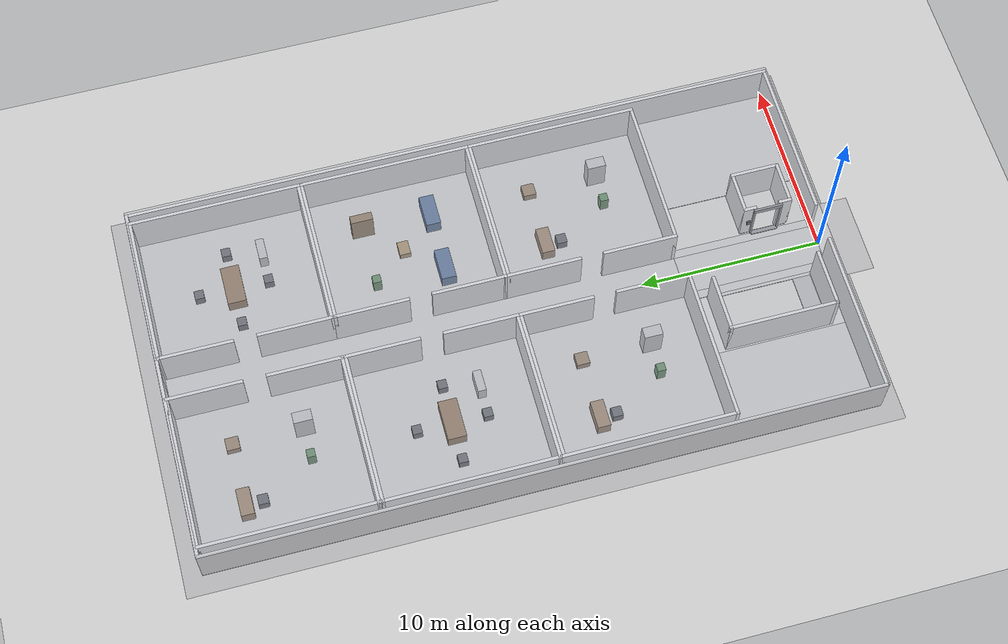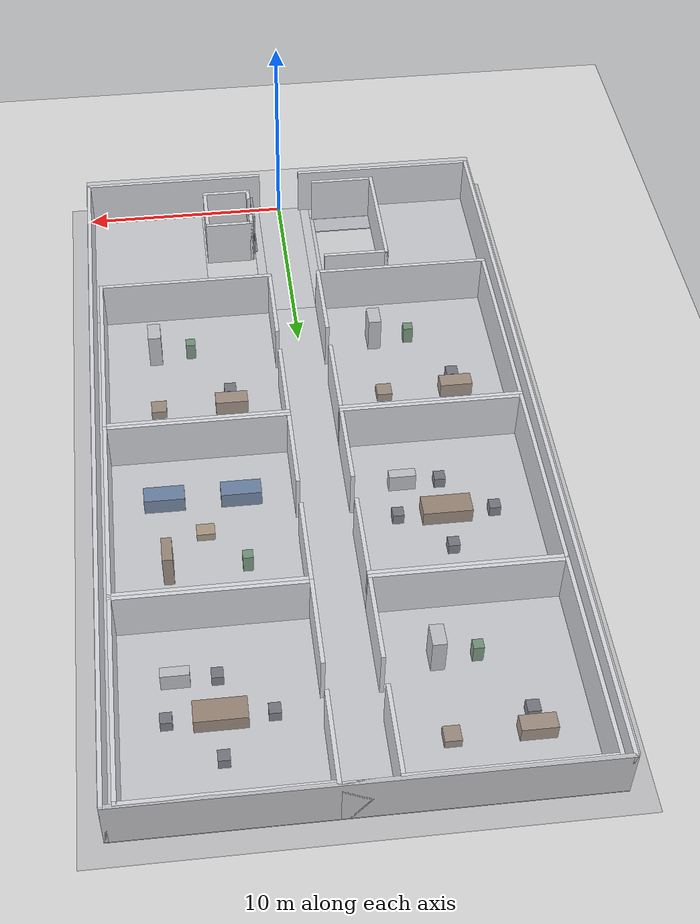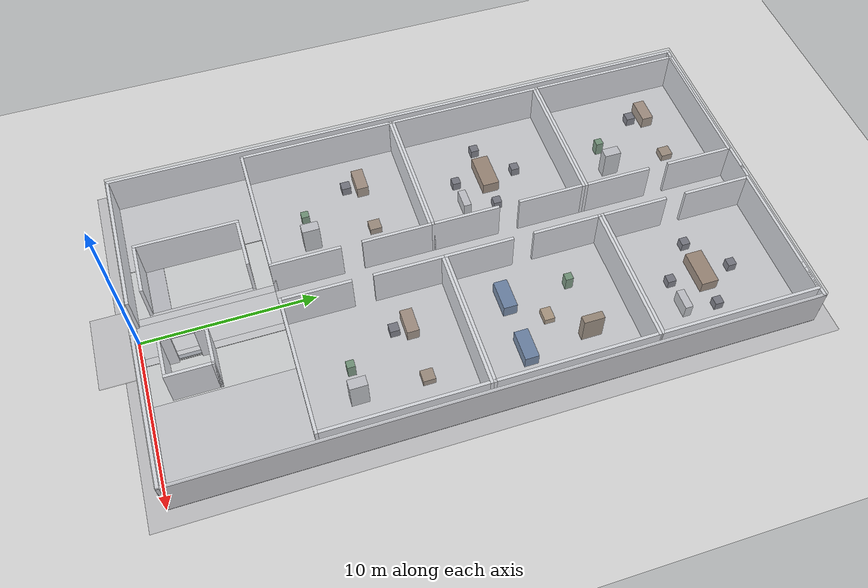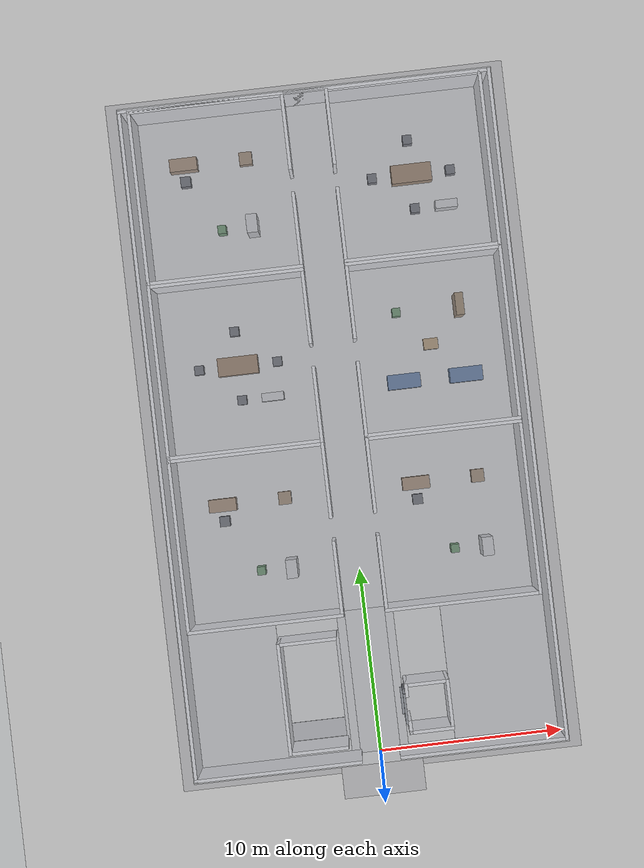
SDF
<sdf version="1.7">
 <world name="generated_world">
  <include><uri>model://sun</uri></include>
  <include><uri>model://ground_plane</uri></include>
  <model name="generated_building">
   <static>true</static>
   <link name="foundation">
    <pose>0.0000 18.0000 -0.1500 0.0000 0.0000 0.0000</pose>
    <collision name="foundation_collision">
     <geometry><box><size>22.0000 38.0000 0.3000</size></box></geometry>
    </collision>
    <visual name="foundation_visual">
     <geometry><box><size>22.0000 38.0000 0.3000</size></box></geometry>
     <material><ambient>0.58 0.58 0.60 0.35</ambient><diffuse>0.58 0.58 0.60 0.35</diffuse></material>
    </visual>
    <gravity>false</gravity>
   </link>
   <link name="entrance_apron">
    <pose>0.0000 -1.2000 0.0400 0.0000 0.0000 0.0000</pose>
    <collision name="entrance_apron_collision">
     <geometry><box><size>4.5000 2.4000 0.0800</size></box></geometry>
    </collision>
    <visual name="entrance_apron_visual">
     <geometry><box><size>4.5000 2.4000 0.0800</size></box></geometry>
     <material><ambient>0.62 0.62 0.64 0.35</ambient><diffuse>0.62 0.62 0.64 0.35</diffuse></material>
    </visual>
    <gravity>false</gravity>
   </link>
   <link name="slab_floor_0_0">
    <pose>0.0000 21.9250 -0.1100 0.0000 0.0000 0.0000</pose>
    <collision name="slab_floor_0_0_collision">
     <geometry><box><size>20.0000 28.1500 0.2200</size></box></geometry>
    </collision>
    <visual name="slab_floor_0_0_visual">
     <geometry><box><size>20.0000 28.1500 0.2200</size></box></geometry>
     <material><ambient>0.76 0.76 0.77 1.0</ambient><diffuse>0.76 0.76 0.77 1.0</diffuse></material>
    </visual>
    <gravity>false</gravity>
   </link>
   <link name="slab_floor_0_1">
    <pose>-7.4700 3.9250 -0.1100 0.0000 0.0000 0.0000</pose>
    <collision name="slab_floor_0_1_collision">
     <geometry><box><size>5.0600 7.8500 0.2200</size></box></geometry>
    </collision>
    <visual name="slab_floor_0_1_visual">
     <geometry><box><size>5.0600 7.8500 0.2200</size></box></geometry>
     <material><ambient>0.76 0.76 0.77 1.0</ambient><diffuse>0.76 0.76 0.77 1.0</diffuse></material>
    </visual>
    <gravity>false</gravity>
   </link>
   <link name="slab_floor_0_2">
    <pose>-1.3300 3.9250 -0.1100 0.0000 0.0000 0.0000</pose>
    <collision name="slab_floor_0_2_collision">
     <geometry><box><size>0.4600 7.8500 0.2200</size></box></geometry>
    </collision>
    <visual name="slab_floor_0_2_visual">
     <geometry><box><size>0.4600 7.8500 0.2200</size></box></geometry>
     <material><ambient>0.76 0.76 0.77 1.0</ambient><diffuse>0.76 0.76 0.77 1.0</diffuse></material>
    </visual>
    <gravity>false</gravity>
   </link>
   <link name="slab_floor_0_3">
    <pose>0.0000 3.9250 -0.1100 0.0000 0.0000 0.0000</pose>
    <collision name="slab_floor_0_3_collision">
     <geometry><box><size>2.2000 7.8500 0.2200</size></box></geometry>
    </collision>
    <visual name="slab_floor_0_3_visual">
     <geometry><box><size>2.2000 7.8500 0.2200</size></box></geometry>
     <material><ambient>0.76 0.76 0.77 1.0</ambient><diffuse>0.76 0.76 0.77 1.0</diffuse></material>
    </visual>
    <gravity>false</gravity>
   </link>
   <link name="slab_floor_0_4">
    <pose>1.3300 3.9250 -0.1100 0.0000 0.0000 0.0000</pose>
    <collision name="slab_floor_0_4_collision">
     <geometry><box><size>0.4600 7.8500 0.2200</size></box></geometry>
    </collision>
    <visual name="slab_floor_0_4_visual">
     <geometry><box><size>0.4600 7.8500 0.2200</size></box></geometry>
     <material><ambient>0.76 0.76 0.77 1.0</ambient><diffuse>0.76 0.76 0.77 1.0</diffuse></material>
    </visual>
    <gravity>false</gravity>
   </link>
   <link name="slab_floor_0_5">
    <pose>7.0700 3.9250 -0.1100 0.0000 0.0000 0.0000</pose>
    <collision name="slab_floor_0_5_collision">
     <geometry><box><size>5.8600 7.8500 0.2200</size></box></geometry>
    </collision>
    <visual name="slab_floor_0_5_visual">
     <geometry><box><size>5.8600 7.8500 0.2200</size></box></geometry>
     <material><ambient>0.76 0.76 0.77 1.0</ambient><diffuse>0.76 0.76 0.77 1.0</diffuse></material>
    </visual>
    <gravity>false</gravity>
   </link>
   <link name="stair_edge_infill_floor_0">
    <pose>-1.6500 3.8500 -0.1100 0.0000 0.0000 0.0000</pose>
    <collision name="stair_edge_infill_floor_0_collision">
     <geometry><box><size>0.1800 6.0000 0.2200</size></box></geometry>
    </collision>
    <visual name="stair_edge_infill_floor_0_visual">
     <geometry><box><size>0.1800 6.0000 0.2200</size></box></geometry>
     <material><ambient>0.76 0.76 0.77 1.0</ambient><diffuse>0.76 0.76 0.77 1.0</diffuse></material>
    </visual>
    <gravity>false</gravity>
   </link>
   <link name="exterior_west_floor_0">
    <pose>-9.9100 18.0000 1.2250 0.0000 0.0000 0.0000</pose>
    <collision name="exterior_west_floor_0_collision">
     <geometry><box><size>0.1800 36.0000 2.4500</size></box></geometry>
    </collision>
    <visual name="exterior_west_floor_0_visual">
     <geometry><box><size>0.1800 36.0000 2.4500</size></box></geometry>
     <material><ambient>0.86 0.86 0.88 1</ambient><diffuse>0.86 0.86 0.88 1</diffuse></material>
    </visual>
    <gravity>false</gravity>
   </link>
   <link name="exterior_east_floor_0">
    <pose>9.9100 18.0000 1.2250 0.0000 0.0000 0.0000</pose>
    <collision name="exterior_east_floor_0_collision">
     <geometry><box><size>0.1800 36.0000 2.4500</size></box></geometry>
    </collision>
    <visual name="exterior_east_floor_0_visual">
     <geometry><box><size>0.1800 36.0000 2.4500</size></box></geometry>
     <material><ambient>0.86 0.86 0.88 1</ambient><diffuse>0.86 0.86 0.88 1</diffuse></material>
    </visual>
    <gravity>false</gravity>
   </link>
   <link name="exterior_north_floor_0">
    <pose>0.0000 35.9100 1.2250 0.0000 0.0000 0.0000</pose>
    <collision name="exterior_north_floor_0_collision">
     <geometry><box><size>20.0000 0.1800 2.4500</size></box></geometry>
    </collision>
    <visual name="exterior_north_floor_0_visual">
     <geometry><box><size>20.0000 0.1800 2.4500</size></box></geometry>
     <material><ambient>0.86 0.86 0.88 1</ambient><diffuse>0.86 0.86 0.88 1</diffuse></material>
    </visual>
    <gravity>false</gravity>
   </link>
   <link name="exterior_south_entrance_left">
    <pose>-5.5100 0.0900 1.2250 0.0000 0.0000 0.0000</pose>
    <collision name="exterior_south_entrance_left_collision">
     <geometry><box><size>8.9800 0.1800 2.4500</size></box></geometry>
    </collision>
    <visual name="exterior_south_entrance_left_visual">
     <geometry><box><size>8.9800 0.1800 2.4500</size></box></geometry>
     <material><ambient>0.86 0.86 0.88 1</ambient><diffuse>0.86 0.86 0.88 1</diffuse></material>
    </visual>
    <gravity>false</gravity>
   </link>
   <link name="exterior_south_entrance_right">
    <pose>5.5100 0.0900 1.2250 0.0000 0.0000 0.0000</pose>
    <collision name="exterior_south_entrance_right_collision">
     <geometry><box><size>8.9800 0.1800 2.4500</size></box></geometry>
    </collision>
    <visual name="exterior_south_entrance_right_visual">
     <geometry><box><size>8.9800 0.1800 2.4500</size></box></geometry>
     <material><ambient>0.86 0.86 0.88 1</ambient><diffuse>0.86 0.86 0.88 1</diffuse></material>
    </visual>
    <gravity>false</gravity>
   </link>
   <link name="north_end_wall_floor_0">
    <pose>0.0000 35.9100 1.2250 0.0000 0.0000 0.0000</pose>
    <collision name="north_end_wall_floor_0_collision">
     <geometry><box><size>2.2000 0.1800 2.4500</size></box></geometry>
    </collision>
    <visual name="north_end_wall_floor_0_visual">
     <geometry><box><size>2.2000 0.1800 2.4500</size></box></geometry>
     <material><ambient>0.86 0.86 0.88 1</ambient><diffuse>0.86 0.86 0.88 1</diffuse></material>
    </visual>
    <gravity>false</gravity>
   </link>
   <link name="floor_0_room_0_corridor_wall_lower">
    <pose>-1.1900 9.8883 1.2250 0.0000 0.0000 0.0000</pose>
    <collision name="floor_0_room_0_corridor_wall_lower_collision">
     <geometry><box><size>0.1800 4.0767 2.4500</size></box></geometry>
    </collision>
    <visual name="floor_0_room_0_corridor_wall_lower_visual">
     <geometry><box><size>0.1800 4.0767 2.4500</size></box></geometry>
     <material><ambient>0.86 0.86 0.88 1</ambient><diffuse>0.86 0.86 0.88 1</diffuse></material>
    </visual>
    <gravity>false</gravity>
   </link>
   <link name="floor_0_room_0_corridor_wall_upper">
    <pose>-1.1900 15.1650 1.2250 0.0000 0.0000 0.0000</pose>
    <collision name="floor_0_room_0_corridor_wall_upper_collision">
     <geometry><box><size>0.1800 4.0767 2.4500</size></box></geometry>
    </collision>
    <visual name="floor_0_room_0_corridor_wall_upper_visual">
     <geometry><box><size>0.1800 4.0767 2.4500</size></box></geometry>
     <material><ambient>0.86 0.86 0.88 1</ambient><diffuse>0.86 0.86 0.88 1</diffuse></material>
    </visual>
    <gravity>false</gravity>
   </link>
   <link name="floor_0_room_0_west_wall">
    <pose>-9.4100 12.5267 1.2250 0.0000 0.0000 0.0000</pose>
    <collision name="floor_0_room_0_west_wall_collision">
     <geometry><box><size>0.1800 9.3533 2.4500</size></box></geometry>
    </collision>
    <visual name="floor_0_room_0_west_wall_visual">
     <geometry><box><size>0.1800 9.3533 2.4500</size></box></geometry>
     <material><ambient>0.86 0.86 0.88 1</ambient><diffuse>0.86 0.86 0.88 1</diffuse></material>
    </visual>
    <gravity>false</gravity>
   </link>
   <link name="floor_0_room_0_south_wall">
    <pose>-5.3000 7.9400 1.2250 0.0000 0.0000 0.0000</pose>
    <collision name="floor_0_room_0_south_wall_collision">
     <geometry><box><size>8.4000 0.1800 2.4500</size></box></geometry>
    </collision>
    <visual name="floor_0_room_0_south_wall_visual">
     <geometry><box><size>8.4000 0.1800 2.4500</size></box></geometry>
     <material><ambient>0.86 0.86 0.88 1</ambient><diffuse>0.86 0.86 0.88 1</diffuse></material>
    </visual>
    <gravity>false</gravity>
   </link>
   <link name="floor_0_room_0_north_wall">
    <pose>-5.3000 17.1133 1.2250 0.0000 0.0000 0.0000</pose>
    <collision name="floor_0_room_0_north_wall_collision">
     <geometry><box><size>8.4000 0.1800 2.4500</size></box></geometry>
    </collision>
    <visual name="floor_0_room_0_north_wall_visual">
     <geometry><box><size>8.4000 0.1800 2.4500</size></box></geometry>
     <material><ambient>0.86 0.86 0.88 1</ambient><diffuse>0.86 0.86 0.88 1</diffuse></material>
    </visual>
    <gravity>false</gravity>
   </link>
   <link name="floor_0_room_1_corridor_wall_lower">
    <pose>1.1900 9.8883 1.2250 0.0000 0.0000 0.0000</pose>
    <collision name="floor_0_room_1_corridor_wall_lower_collision">
     <geometry><box><size>0.1800 4.0767 2.4500</size></box></geometry>
    </collision>
    <visual name="floor_0_room_1_corridor_wall_lower_visual">
     <geometry><box><size>0.1800 4.0767 2.4500</size></box></geometry>
     <material><ambient>0.86 0.86 0.88 1</ambient><diffuse>0.86 0.86 0.88 1</diffuse></material>
    </visual>
    <gravity>false</gravity>
   </link>
   <link name="floor_0_room_1_corridor_wall_upper">
    <pose>1.1900 15.1650 1.2250 0.0000 0.0000 0.0000</pose>
    <collision name="floor_0_room_1_corridor_wall_upper_collision">
     <geometry><box><size>0.1800 4.0767 2.4500</size></box></geometry>
    </collision>
    <visual name="floor_0_room_1_corridor_wall_upper_visual">
     <geometry><box><size>0.1800 4.0767 2.4500</size></box></geometry>
     <material><ambient>0.86 0.86 0.88 1</ambient><diffuse>0.86 0.86 0.88 1</diffuse></material>
    </visual>
    <gravity>false</gravity>
   </link>
   <link name="floor_0_room_1_east_wall">
    <pose>9.4100 12.5267 1.2250 0.0000 0.0000 0.0000</pose>
    <collision name="floor_0_room_1_east_wall_collision">
     <geometry><box><size>0.1800 9.3533 2.4500</size></box></geometry>
    </collision>
    <visual name="floor_0_room_1_east_wall_visual">
     <geometry><box><size>0.1800 9.3533 2.4500</size></box></geometry>
     <material><ambient>0.86 0.86 0.88 1</ambient><diffuse>0.86 0.86 0.88 1</diffuse></material>
    </visual>
    <gravity>false</gravity>
   </link>
   <link name="floor_0_room_1_south_wall">
    <pose>5.3000 7.9400 1.2250 0.0000 0.0000 0.0000</pose>
    <collision name="floor_0_room_1_south_wall_collision">
     <geometry><box><size>8.4000 0.1800 2.4500</size></box></geometry>
    </collision>
    <visual name="floor_0_room_1_south_wall_visual">
     <geometry><box><size>8.4000 0.1800 2.4500</size></box></geometry>
     <material><ambient>0.86 0.86 0.88 1</ambient><diffuse>0.86 0.86 0.88 1</diffuse></material>
    </visual>
    <gravity>false</gravity>
   </link>
   <link name="floor_0_room_1_north_wall">
    <pose>5.3000 17.1133 1.2250 0.0000 0.0000 0.0000</pose>
    <collision name="floor_0_room_1_north_wall_collision">
     <geometry><box><size>8.4000 0.1800 2.4500</size></box></geometry>
    </collision>
    <visual name="floor_0_room_1_north_wall_visual">
     <geometry><box><size>8.4000 0.1800 2.4500</size></box></geometry>
     <material><ambient>0.86 0.86 0.88 1</ambient><diffuse>0.86 0.86 0.88 1</diffuse></material>
    </visual>
    <gravity>false</gravity>
   </link>
   <link name="floor_0_room_2_corridor_wall_lower">
    <pose>-1.1900 19.2417 1.2250 0.0000 0.0000 0.0000</pose>
    <collision name="floor_0_room_2_corridor_wall_lower_collision">
     <geometry><box><size>0.1800 4.0767 2.4500</size></box></geometry>
    </collision>
    <visual name="floor_0_room_2_corridor_wall_lower_visual">
     <geometry><box><size>0.1800 4.0767 2.4500</size></box></geometry>
     <material><ambient>0.86 0.86 0.88 1</ambient><diffuse>0.86 0.86 0.88 1</diffuse></material>
    </visual>
    <gravity>false</gravity>
   </link>
   <link name="floor_0_room_2_corridor_wall_upper">
    <pose>-1.1900 24.5183 1.2250 0.0000 0.0000 0.0000</pose>
    <collision name="floor_0_room_2_corridor_wall_upper_collision">
     <geometry><box><size>0.1800 4.0767 2.4500</size></box></geometry>
    </collision>
    <visual name="floor_0_room_2_corridor_wall_upper_visual">
     <geometry><box><size>0.1800 4.0767 2.4500</size></box></geometry>
     <material><ambient>0.86 0.86 0.88 1</ambient><diffuse>0.86 0.86 0.88 1</diffuse></material>
    </visual>
    <gravity>false</gravity>
   </link>
   <link name="floor_0_room_2_west_wall">
    <pose>-9.4100 21.8800 1.2250 0.0000 0.0000 0.0000</pose>
    <collision name="floor_0_room_2_west_wall_collision">
     <geometry><box><size>0.1800 9.3533 2.4500</size></box></geometry>
    </collision>
    <visual name="floor_0_room_2_west_wall_visual">
     <geometry><box><size>0.1800 9.3533 2.4500</size></box></geometry>
     <material><ambient>0.86 0.86 0.88 1</ambient><diffuse>0.86 0.86 0.88 1</diffuse></material>
    </visual>
    <gravity>false</gravity>
   </link>
   <link name="floor_0_room_2_south_wall">
    <pose>-5.3000 17.2933 1.2250 0.0000 0.0000 0.0000</pose>
    <collision name="floor_0_room_2_south_wall_collision">
     <geometry><box><size>8.4000 0.1800 2.4500</size></box></geometry>
    </collision>
    <visual name="floor_0_room_2_south_wall_visual">
     <geometry><box><size>8.4000 0.1800 2.4500</size></box></geometry>
     <material><ambient>0.86 0.86 0.88 1</ambient><diffuse>0.86 0.86 0.88 1</diffuse></material>
    </visual>
    <gravity>false</gravity>
   </link>
   <link name="floor_0_room_2_north_wall">
    <pose>-5.3000 26.4667 1.2250 0.0000 0.0000 0.0000</pose>
    <collision name="floor_0_room_2_north_wall_collision">
     <geometry><box><size>8.4000 0.1800 2.4500</size></box></geometry>
    </collision>
    <visual name="floor_0_room_2_north_wall_visual">
     <geometry><box><size>8.4000 0.1800 2.4500</size></box></geometry>
     <material><ambient>0.86 0.86 0.88 1</ambient><diffuse>0.86 0.86 0.88 1</diffuse></material>
    </visual>
    <gravity>false</gravity>
   </link>
   <link name="floor_0_room_3_corridor_wall_lower">
    <pose>1.1900 19.2417 1.2250 0.0000 0.0000 0.0000</pose>
    <collision name="floor_0_room_3_corridor_wall_lower_collision">
     <geometry><box><size>0.1800 4.0767 2.4500</size></box></geometry>
    </collision>
    <visual name="floor_0_room_3_corridor_wall_lower_visual">
     <geometry><box><size>0.1800 4.0767 2.4500</size></box></geometry>
     <material><ambient>0.86 0.86 0.88 1</ambient><diffuse>0.86 0.86 0.88 1</diffuse></material>
    </visual>
    <gravity>false</gravity>
   </link>
   <link name="floor_0_room_3_corridor_wall_upper">
    <pose>1.1900 24.5183 1.2250 0.0000 0.0000 0.0000</pose>
    <collision name="floor_0_room_3_corridor_wall_upper_collision">
     <geometry><box><size>0.1800 4.0767 2.4500</size></box></geometry>
    </collision>
    <visual name="floor_0_room_3_corridor_wall_upper_visual">
     <geometry><box><size>0.1800 4.0767 2.4500</size></box></geometry>
     <material><ambient>0.86 0.86 0.88 1</ambient><diffuse>0.86 0.86 0.88 1</diffuse></material>
    </visual>
    <gravity>false</gravity>
   </link>
   <link name="floor_0_room_3_east_wall">
    <pose>9.4100 21.8800 1.2250 0.0000 0.0000 0.0000</pose>
    <collision name="floor_0_room_3_east_wall_collision">
     <geometry><box><size>0.1800 9.3533 2.4500</size></box></geometry>
    </collision>
    <visual name="floor_0_room_3_east_wall_visual">
     <geometry><box><size>0.1800 9.3533 2.4500</size></box></geometry>
     <material><ambient>0.86 0.86 0.88 1</ambient><diffuse>0.86 0.86 0.88 1</diffuse></material>
    </visual>
    <gravity>false</gravity>
   </link>
   <link name="floor_0_room_3_south_wall">
    <pose>5.3000 17.2933 1.2250 0.0000 0.0000 0.0000</pose>
    <collision name="floor_0_room_3_south_wall_collision">
     <geometry><box><size>8.4000 0.1800 2.4500</size></box></geometry>
    </collision>
    <visual name="floor_0_room_3_south_wall_visual">
     <geometry><box><size>8.4000 0.1800 2.4500</size></box></geometry>
     <material><ambient>0.86 0.86 0.88 1</ambient><diffuse>0.86 0.86 0.88 1</diffuse></material>
    </visual>
    <gravity>false</gravity>
   </link>
   <link name="floor_0_room_3_north_wall">
    <pose>5.3000 26.4667 1.2250 0.0000 0.0000 0.0000</pose>
    <collision name="floor_0_room_3_north_wall_collision">
     <geometry><box><size>8.4000 0.1800 2.4500</size></box></geometry>
    </collision>
    <visual name="floor_0_room_3_north_wall_visual">
     <geometry><box><size>8.4000 0.1800 2.4500</size></box></geometry>
     <material><ambient>0.86 0.86 0.88 1</ambient><diffuse>0.86 0.86 0.88 1</diffuse></material>
    </visual>
    <gravity>false</gravity>
   </link>
   <link name="floor_0_room_4_corridor_wall_lower">
    <pose>-1.1900 28.5950 1.2250 0.0000 0.0000 0.0000</pose>
    <collision name="floor_0_room_4_corridor_wall_lower_collision">
     <geometry><box><size>0.1800 4.0767 2.4500</size></box></geometry>
    </collision>
    <visual name="floor_0_room_4_corridor_wall_lower_visual">
     <geometry><box><size>0.1800 4.0767 2.4500</size></box></geometry>
     <material><ambient>0.86 0.86 0.88 1</ambient><diffuse>0.86 0.86 0.88 1</diffuse></material>
    </visual>
    <gravity>false</gravity>
   </link>
   <link name="floor_0_room_4_corridor_wall_upper">
    <pose>-1.1900 33.8717 1.2250 0.0000 0.0000 0.0000</pose>
    <collision name="floor_0_room_4_corridor_wall_upper_collision">
     <geometry><box><size>0.1800 4.0767 2.4500</size></box></geometry>
    </collision>
    <visual name="floor_0_room_4_corridor_wall_upper_visual">
     <geometry><box><size>0.1800 4.0767 2.4500</size></box></geometry>
     <material><ambient>0.86 0.86 0.88 1</ambient><diffuse>0.86 0.86 0.88 1</diffuse></material>
    </visual>
    <gravity>false</gravity>
   </link>
   <link name="floor_0_room_4_west_wall">
    <pose>-9.4100 31.2333 1.2250 0.0000 0.0000 0.0000</pose>
    <collision name="floor_0_room_4_west_wall_collision">
     <geometry><box><size>0.1800 9.3533 2.4500</size></box></geometry>
    </collision>
    <visual name="floor_0_room_4_west_wall_visual">
     <geometry><box><size>0.1800 9.3533 2.4500</size></box></geometry>
     <material><ambient>0.86 0.86 0.88 1</ambient><diffuse>0.86 0.86 0.88 1</diffuse></material>
    </visual>
    <gravity>false</gravity>
   </link>
   <link name="floor_0_room_4_south_wall">
    <pose>-5.3000 26.6467 1.2250 0.0000 0.0000 0.0000</pose>
    <collision name="floor_0_room_4_south_wall_collision">
     <geometry><box><size>8.4000 0.1800 2.4500</size></box></geometry>
    </collision>
    <visual name="floor_0_room_4_south_wall_visual">
     <geometry><box><size>8.4000 0.1800 2.4500</size></box></geometry>
     <material><ambient>0.86 0.86 0.88 1</ambient><diffuse>0.86 0.86 0.88 1</diffuse></material>
    </visual>
    <gravity>false</gravity>
   </link>
   <link name="floor_0_room_4_north_wall">
    <pose>-5.3000 35.8200 1.2250 0.0000 0.0000 0.0000</pose>
    <collision name="floor_0_room_4_north_wall_collision">
     <geometry><box><size>8.4000 0.1800 2.4500</size></box></geometry>
    </collision>
    <visual name="floor_0_room_4_north_wall_visual">
     <geometry><box><size>8.4000 0.1800 2.4500</size></box></geometry>
     <material><ambient>0.86 0.86 0.88 1</ambient><diffuse>0.86 0.86 0.88 1</diffuse></material>
    </visual>
    <gravity>false</gravity>
   </link>
   <link name="floor_0_room_5_corridor_wall_lower">
    <pose>1.1900 28.5950 1.2250 0.0000 0.0000 0.0000</pose>
    <collision name="floor_0_room_5_corridor_wall_lower_collision">
     <geometry><box><size>0.1800 4.0767 2.4500</size></box></geometry>
    </collision>
    <visual name="floor_0_room_5_corridor_wall_lower_visual">
     <geometry><box><size>0.1800 4.0767 2.4500</size></box></geometry>
     <material><ambient>0.86 0.86 0.88 1</ambient><diffuse>0.86 0.86 0.88 1</diffuse></material>
    </visual>
    <gravity>false</gravity>
   </link>
   <link name="floor_0_room_5_corridor_wall_upper">
    <pose>1.1900 33.8717 1.2250 0.0000 0.0000 0.0000</pose>
    <collision name="floor_0_room_5_corridor_wall_upper_collision">
     <geometry><box><size>0.1800 4.0767 2.4500</size></box></geometry>
    </collision>
    <visual name="floor_0_room_5_corridor_wall_upper_visual">
     <geometry><box><size>0.1800 4.0767 2.4500</size></box></geometry>
     <material><ambient>0.86 0.86 0.88 1</ambient><diffuse>0.86 0.86 0.88 1</diffuse></material>
    </visual>
    <gravity>false</gravity>
   </link>
   <link name="floor_0_room_5_east_wall">
    <pose>9.4100 31.2333 1.2250 0.0000 0.0000 0.0000</pose>
    <collision name="floor_0_room_5_east_wall_collision">
     <geometry><box><size>0.1800 9.3533 2.4500</size></box></geometry>
    </collision>
    <visual name="floor_0_room_5_east_wall_visual">
     <geometry><box><size>0.1800 9.3533 2.4500</size></box></geometry>
     <material><ambient>0.86 0.86 0.88 1</ambient><diffuse>0.86 0.86 0.88 1</diffuse></material>
    </visual>
    <gravity>false</gravity>
   </link>
   <link name="floor_0_room_5_south_wall">
    <pose>5.3000 26.6467 1.2250 0.0000 0.0000 0.0000</pose>
    <collision name="floor_0_room_5_south_wall_collision">
     <geometry><box><size>8.4000 0.1800 2.4500</size></box></geometry>
    </collision>
    <visual name="floor_0_room_5_south_wall_visual">
     <geometry><box><size>8.4000 0.1800 2.4500</size></box></geometry>
     <material><ambient>0.86 0.86 0.88 1</ambient><diffuse>0.86 0.86 0.88 1</diffuse></material>
    </visual>
    <gravity>false</gravity>
   </link>
   <link name="floor_0_room_5_north_wall">
    <pose>5.3000 35.8200 1.2250 0.0000 0.0000 0.0000</pose>
    <collision name="floor_0_room_5_north_wall_collision">
     <geometry><box><size>8.4000 0.1800 2.4500</size></box></geometry>
    </collision>
    <visual name="floor_0_room_5_north_wall_visual">
     <geometry><box><size>8.4000 0.1800 2.4500</size></box></geometry>
     <material><ambient>0.86 0.86 0.88 1</ambient><diffuse>0.86 0.86 0.88 1</diffuse></material>
    </visual>
    <gravity>false</gravity>
   </link>
   <link name="stair_core_floor_0_west">
    <pose>-4.7600 3.8500 1.2250 0.0000 0.0000 0.0000</pose>
    <collision name="stair_core_floor_0_west_collision">
     <geometry><box><size>0.1800 6.0000 2.4500</size></box></geometry>
    </collision>
    <visual name="stair_core_floor_0_west_visual">
     <geometry><box><size>0.1800 6.0000 2.4500</size></box></geometry>
     <material><ambient>0.86 0.86 0.88 1</ambient><diffuse>0.86 0.86 0.88 1</diffuse></material>
    </visual>
    <gravity>false</gravity>
   </link>
   <link name="stair_core_floor_0_south">
    <pose>-3.2500 0.9400 1.2250 0.0000 0.0000 0.0000</pose>
    <collision name="stair_core_floor_0_south_collision">
     <geometry><box><size>3.2000 0.1800 2.4500</size></box></geometry>
    </collision>
    <visual name="stair_core_floor_0_south_visual">
     <geometry><box><size>3.2000 0.1800 2.4500</size></box></geometry>
     <material><ambient>0.86 0.86 0.88 1</ambient><diffuse>0.86 0.86 0.88 1</diffuse></material>
    </visual>
    <gravity>false</gravity>
   </link>
   <link name="stair_core_floor_0_north">
    <pose>-3.2500 6.7600 1.2250 0.0000 0.0000 0.0000</pose>
    <collision name="stair_core_floor_0_north_collision">
     <geometry><box><size>3.2000 0.1800 2.4500</size></box></geometry>
    </collision>
    <visual name="stair_core_floor_0_north_visual">
     <geometry><box><size>3.2000 0.1800 2.4500</size></box></geometry>
     <material><ambient>0.86 0.86 0.88 1</ambient><diffuse>0.86 0.86 0.88 1</diffuse></material>
    </visual>
    <gravity>false</gravity>
   </link>
   <link name="elevator_core_floor_0_west_lower">
    <pose>1.7400 1.6150 1.2250 0.0000 0.0000 0.0000</pose>
    <collision name="elevator_core_floor_0_west_lower_collision">
     <geometry><box><size>0.1800 0.7300 2.4500</size></box></geometry>
    </collision>
    <visual name="elevator_core_floor_0_west_lower_visual">
     <geometry><box><size>0.1800 0.7300 2.4500</size></box></geometry>
     <material><ambient>0.86 0.86 0.88 1</ambient><diffuse>0.86 0.86 0.88 1</diffuse></material>
    </visual>
    <gravity>false</gravity>
   </link>
   <link name="elevator_core_floor_0_west_upper">
    <pose>1.7400 3.5850 1.2250 0.0000 0.0000 0.0000</pose>
    <collision name="elevator_core_floor_0_west_upper_collision">
     <geometry><box><size>0.1800 0.7300 2.4500</size></box></geometry>
    </collision>
    <visual name="elevator_core_floor_0_west_upper_visual">
     <geometry><box><size>0.1800 0.7300 2.4500</size></box></geometry>
     <material><ambient>0.86 0.86 0.88 1</ambient><diffuse>0.86 0.86 0.88 1</diffuse></material>
    </visual>
    <gravity>false</gravity>
   </link>
   <link name="elevator_core_floor_0_east">
    <pose>3.9600 2.6000 1.2250 0.0000 0.0000 0.0000</pose>
    <collision name="elevator_core_floor_0_east_collision">
     <geometry><box><size>0.1800 2.7000 2.4500</size></box></geometry>
    </collision>
    <visual name="elevator_core_floor_0_east_visual">
     <geometry><box><size>0.1800 2.7000 2.4500</size></box></geometry>
     <material><ambient>0.86 0.86 0.88 1</ambient><diffuse>0.86 0.86 0.88 1</diffuse></material>
    </visual>
    <gravity>false</gravity>
   </link>
   <link name="elevator_core_floor_0_south">
    <pose>2.8500 1.3400 1.2250 0.0000 0.0000 0.0000</pose>
    <collision name="elevator_core_floor_0_south_collision">
     <geometry><box><size>2.4000 0.1800 2.4500</size></box></geometry>
    </collision>
    <visual name="elevator_core_floor_0_south_visual">
     <geometry><box><size>2.4000 0.1800 2.4500</size></box></geometry>
     <material><ambient>0.86 0.86 0.88 1</ambient><diffuse>0.86 0.86 0.88 1</diffuse></material>
    </visual>
    <gravity>false</gravity>
   </link>
   <link name="elevator_core_floor_0_north">
    <pose>2.8500 3.8600 1.2250 0.0000 0.0000 0.0000</pose>
    <collision name="elevator_core_floor_0_north_collision">
     <geometry><box><size>2.4000 0.1800 2.4500</size></box></geometry>
    </collision>
    <visual name="elevator_core_floor_0_north_visual">
     <geometry><box><size>2.4000 0.1800 2.4500</size></box></geometry>
     <material><ambient>0.86 0.86 0.88 1</ambient><diffuse>0.86 0.86 0.88 1</diffuse></material>
    </visual>
    <gravity>false</gravity>
   </link>
   <link name="elevator_threshold_floor_0">
    <pose>1.5400 2.6000 0.0300 0.0000 0.0000 0.0000</pose>
    <collision name="elevator_threshold_floor_0_collision">
     <geometry><box><size>0.2200 1.5000 0.0600</size></box></geometry>
    </collision>
    <visual name="elevator_threshold_floor_0_visual">
     <geometry><box><size>0.2200 1.5000 0.0600</size></box></geometry>
     <material><ambient>0.50 0.51 0.54 1</ambient><diffuse>0.50 0.51 0.54 1</diffuse></material>
    </visual>
    <gravity>false</gravity>
   </link>
   <link name="elevator_sill_infill_floor_0">
    <pose>1.6750 2.6000 -0.1100 0.0000 0.0000 0.0000</pose>
    <collision name="elevator_sill_infill_floor_0_collision">
     <geometry><box><size>0.0500 2.5200 0.2200</size></box></geometry>
    </collision>
    <visual name="elevator_sill_infill_floor_0_visual">
     <geometry><box><size>0.0500 2.5200 0.2200</size></box></geometry>
     <material><ambient>0.72 0.72 0.73 1</ambient><diffuse>0.72 0.72 0.73 1</diffuse></material>
    </visual>
    <gravity>false</gravity>
   </link>
   <link name="elevator_header_floor_0">
    <pose>1.5900 2.6000 2.2600 0.0000 0.0000 0.0000</pose>
    <collision name="elevator_header_floor_0_collision">
     <geometry><box><size>0.1200 1.6000 0.2800</size></box></geometry>
    </collision>
    <visual name="elevator_header_floor_0_visual">
     <geometry><box><size>0.1200 1.6000 0.2800</size></box></geometry>
     <material><ambient>0.50 0.51 0.54 1</ambient><diffuse>0.50 0.51 0.54 1</diffuse></material>
    </visual>
    <gravity>false</gravity>
   </link>
   <link name="elevator_jamb_left_floor_0">
    <pose>1.5900 1.8500 1.1000 0.0000 0.0000 0.0000</pose>
    <collision name="elevator_jamb_left_floor_0_collision">
     <geometry><box><size>0.1200 0.1000 2.2000</size></box></geometry>
    </collision>
    <visual name="elevator_jamb_left_floor_0_visual">
     <geometry><box><size>0.1200 0.1000 2.2000</size></box></geometry>
     <material><ambient>0.50 0.51 0.54 1</ambient><diffuse>0.50 0.51 0.54 1</diffuse></material>
    </visual>
    <gravity>false</gravity>
   </link>
   <link name="elevator_jamb_right_floor_0">
    <pose>1.5900 3.3500 1.1000 0.0000 0.0000 0.0000</pose>
    <collision name="elevator_jamb_right_floor_0_collision">
     <geometry><box><size>0.1200 0.1000 2.2000</size></box></geometry>
    </collision>
    <visual name="elevator_jamb_right_floor_0_visual">
     <geometry><box><size>0.1200 0.1000 2.2000</size></box></geometry>
     <material><ambient>0.50 0.51 0.54 1</ambient><diffuse>0.50 0.51 0.54 1</diffuse></material>
    </visual>
    <gravity>false</gravity>
   </link>
   <link name="elevator_call_panel_floor_0">
    <pose>1.5700 3.5800 1.2000 0.0000 0.0000 0.0000</pose>
    <collision name="elevator_call_panel_floor_0_collision">
     <geometry><box><size>0.0800 0.2200 0.3200</size></box></geometry>
    </collision>
    <visual name="elevator_call_panel_floor_0_visual">
     <geometry><box><size>0.0800 0.2200 0.3200</size></box></geometry>
     <material><ambient>0.20 0.20 0.24 1</ambient><diffuse>0.20 0.20 0.24 1</diffuse></material>
    </visual>
    <gravity>false</gravity>
   </link>
   <link name="floor_0_room_0_desk">
    <pose>-7.0000 14.4150 0.4500 0.0000 0.0000 0.0000</pose>
    <collision name="floor_0_room_0_desk_collision">
     <geometry><box><size>1.5000 0.7000 0.7500</size></box></geometry>
    </collision>
    <visual name="floor_0_room_0_desk_visual">
     <geometry><box><size>1.5000 0.7000 0.7500</size></box></geometry>
     <material><ambient>0.54 0.43 0.34 1</ambient><diffuse>0.54 0.43 0.34 1</diffuse></material>
    </visual>
    <gravity>false</gravity>
   </link>
   <link name="floor_0_room_0_chair">
    <pose>-7.0000 13.5150 0.2800 0.0000 0.0000 0.0000</pose>
    <collision name="floor_0_room_0_chair_collision">
     <geometry><box><size>0.5500 0.5500 0.5500</size></box></geometry>
    </collision>
    <visual name="floor_0_room_0_chair_visual">
     <geometry><box><size>0.5500 0.5500 0.5500</size></box></geometry>
     <material><ambient>0.30 0.30 0.34 1</ambient><diffuse>0.30 0.30 0.34 1</diffuse></material>
    </visual>
    <gravity>false</gravity>
   </link>
   <link name="floor_0_room_0_cabinet">
    <pose>-3.6000 10.6383 0.9000 0.0000 0.0000 0.0000</pose>
    <collision name="floor_0_room_0_cabinet_collision">
     <geometry><box><size>0.6000 1.0000 1.8000</size></box></geometry>
    </collision>
    <visual name="floor_0_room_0_cabinet_visual">
     <geometry><box><size>0.6000 1.0000 1.8000</size></box></geometry>
     <material><ambient>0.72 0.72 0.74 1</ambient><diffuse>0.72 0.72 0.74 1</diffuse></material>
    </visual>
    <gravity>false</gravity>
   </link>
   <link name="floor_0_room_0_side_table">
    <pose>-3.6000 14.4150 0.3200 0.0000 0.0000 0.0000</pose>
    <collision name="floor_0_room_0_side_table_collision">
     <geometry><box><size>0.7000 0.7000 0.4500</size></box></geometry>
    </collision>
    <visual name="floor_0_room_0_side_table_visual">
     <geometry><box><size>0.7000 0.7000 0.4500</size></box></geometry>
     <material><ambient>0.52 0.42 0.33 1</ambient><diffuse>0.52 0.42 0.33 1</diffuse></material>
    </visual>
    <gravity>false</gravity>
   </link>
   <link name="floor_0_room_0_planter">
    <pose>-5.3000 10.6383 0.4500 0.0000 0.0000 0.0000</pose>
    <collision name="floor_0_room_0_planter_collision">
     <geometry><box><size>0.4500 0.4500 0.9000</size></box></geometry>
    </collision>
    <visual name="floor_0_room_0_planter_visual">
     <geometry><box><size>0.4500 0.4500 0.9000</size></box></geometry>
     <material><ambient>0.28 0.46 0.30 1</ambient><diffuse>0.28 0.46 0.30 1</diffuse></material>
    </visual>
    <gravity>false</gravity>
   </link>
   <link name="floor_0_room_1_desk">
    <pose>3.6000 14.4150 0.4500 0.0000 0.0000 0.0000</pose>
    <collision name="floor_0_room_1_desk_collision">
     <geometry><box><size>1.5000 0.7000 0.7500</size></box></geometry>
    </collision>
    <visual name="floor_0_room_1_desk_visual">
     <geometry><box><size>1.5000 0.7000 0.7500</size></box></geometry>
     <material><ambient>0.54 0.43 0.34 1</ambient><diffuse>0.54 0.43 0.34 1</diffuse></material>
    </visual>
    <gravity>false</gravity>
   </link>
   <link name="floor_0_room_1_chair">
    <pose>3.6000 13.5150 0.2800 0.0000 0.0000 0.0000</pose>
    <collision name="floor_0_room_1_chair_collision">
     <geometry><box><size>0.5500 0.5500 0.5500</size></box></geometry>
    </collision>
    <visual name="floor_0_room_1_chair_visual">
     <geometry><box><size>0.5500 0.5500 0.5500</size></box></geometry>
     <material><ambient>0.30 0.30 0.34 1</ambient><diffuse>0.30 0.30 0.34 1</diffuse></material>
    </visual>
    <gravity>false</gravity>
   </link>
   <link name="floor_0_room_1_cabinet">
    <pose>7.0000 10.6383 0.9000 0.0000 0.0000 0.0000</pose>
    <collision name="floor_0_room_1_cabinet_collision">
     <geometry><box><size>0.6000 1.0000 1.8000</size></box></geometry>
    </collision>
    <visual name="floor_0_room_1_cabinet_visual">
     <geometry><box><size>0.6000 1.0000 1.8000</size></box></geometry>
     <material><ambient>0.72 0.72 0.74 1</ambient><diffuse>0.72 0.72 0.74 1</diffuse></material>
    </visual>
    <gravity>false</gravity>
   </link>
   <link name="floor_0_room_1_side_table">
    <pose>7.0000 14.4150 0.3200 0.0000 0.0000 0.0000</pose>
    <collision name="floor_0_room_1_side_table_collision">
     <geometry><box><size>0.7000 0.7000 0.4500</size></box></geometry>
    </collision>
    <visual name="floor_0_room_1_side_table_visual">
     <geometry><box><size>0.7000 0.7000 0.4500</size></box></geometry>
     <material><ambient>0.52 0.42 0.33 1</ambient><diffuse>0.52 0.42 0.33 1</diffuse></material>
    </visual>
    <gravity>false</gravity>
   </link>
   <link name="floor_0_room_1_planter">
    <pose>5.3000 10.6383 0.4500 0.0000 0.0000 0.0000</pose>
    <collision name="floor_0_room_1_planter_collision">
     <geometry><box><size>0.4500 0.4500 0.9000</size></box></geometry>
    </collision>
    <visual name="floor_0_room_1_planter_visual">
     <geometry><box><size>0.4500 0.4500 0.9000</size></box></geometry>
     <material><ambient>0.28 0.46 0.30 1</ambient><diffuse>0.28 0.46 0.30 1</diffuse></material>
    </visual>
    <gravity>false</gravity>
   </link>
   <link name="floor_0_room_2_table">
    <pose>-5.3000 21.8800 0.4500 0.0000 0.0000 0.0000</pose>
    <collision name="floor_0_room_2_table_collision">
     <geometry><box><size>2.2000 1.0000 0.7500</size></box></geometry>
    </collision>
    <visual name="floor_0_room_2_table_visual">
     <geometry><box><size>2.2000 1.0000 0.7500</size></box></geometry>
     <material><ambient>0.50 0.38 0.28 1</ambient><diffuse>0.50 0.38 0.28 1</diffuse></material>
    </visual>
    <gravity>false</gravity>
   </link>
   <link name="floor_0_room_2_chair_north">
    <pose>-5.3000 23.7683 0.2800 0.0000 0.0000 0.0000</pose>
    <collision name="floor_0_room_2_chair_north_collision">
     <geometry><box><size>0.5000 0.5000 0.5500</size></box></geometry>
    </collision>
    <visual name="floor_0_room_2_chair_north_visual">
     <geometry><box><size>0.5000 0.5000 0.5500</size></box></geometry>
     <material><ambient>0.30 0.30 0.34 1</ambient><diffuse>0.30 0.30 0.34 1</diffuse></material>
    </visual>
    <gravity>false</gravity>
   </link>
   <link name="floor_0_room_2_chair_south">
    <pose>-5.3000 19.9917 0.2800 0.0000 0.0000 0.0000</pose>
    <collision name="floor_0_room_2_chair_south_collision">
     <geometry><box><size>0.5000 0.5000 0.5500</size></box></geometry>
    </collision>
    <visual name="floor_0_room_2_chair_south_visual">
     <geometry><box><size>0.5000 0.5000 0.5500</size></box></geometry>
     <material><ambient>0.30 0.30 0.34 1</ambient><diffuse>0.30 0.30 0.34 1</diffuse></material>
    </visual>
    <gravity>false</gravity>
   </link>
   <link name="floor_0_room_2_chair_west">
    <pose>-7.4500 21.8800 0.2800 0.0000 0.0000 1.5700</pose>
    <collision name="floor_0_room_2_chair_west_collision">
     <geometry><box><size>0.5000 0.5000 0.5500</size></box></geometry>
    </collision>
    <visual name="floor_0_room_2_chair_west_visual">
     <geometry><box><size>0.5000 0.5000 0.5500</size></box></geometry>
     <material><ambient>0.30 0.30 0.34 1</ambient><diffuse>0.30 0.30 0.34 1</diffuse></material>
    </visual>
    <gravity>false</gravity>
   </link>
   <link name="floor_0_room_2_chair_east">
    <pose>-3.1500 21.8800 0.2800 0.0000 0.0000 1.5700</pose>
    <collision name="floor_0_room_2_chair_east_collision">
     <geometry><box><size>0.5000 0.5000 0.5500</size></box></geometry>
    </collision>
    <visual name="floor_0_room_2_chair_east_visual">
     <geometry><box><size>0.5000 0.5000 0.5500</size></box></geometry>
     <material><ambient>0.30 0.30 0.34 1</ambient><diffuse>0.30 0.30 0.34 1</diffuse></material>
    </visual>
    <gravity>false</gravity>
   </link>
   <link name="floor_0_room_2_credenza">
    <pose>-3.6000 19.9917 0.4500 0.0000 0.0000 0.0000</pose>
    <collision name="floor_0_room_2_credenza_collision">
     <geometry><box><size>1.2000 0.4500 0.9000</size></box></geometry>
    </collision>
    <visual name="floor_0_room_2_credenza_visual">
     <geometry><box><size>1.2000 0.4500 0.9000</size></box></geometry>
     <material><ambient>0.72 0.72 0.74 1</ambient><diffuse>0.72 0.72 0.74 1</diffuse></material>
    </visual>
    <gravity>false</gravity>
   </link>
   <link name="floor_0_room_3_sofa_a">
    <pose>3.6000 19.9917 0.4500 0.0000 0.0000 0.0000</pose>
    <collision name="floor_0_room_3_sofa_a_collision">
     <geometry><box><size>1.8000 0.8000 0.8000</size></box></geometry>
    </collision>
    <visual name="floor_0_room_3_sofa_a_visual">
     <geometry><box><size>1.8000 0.8000 0.8000</size></box></geometry>
     <material><ambient>0.24 0.36 0.54 1</ambient><diffuse>0.24 0.36 0.54 1</diffuse></material>
    </visual>
    <gravity>false</gravity>
   </link>
   <link name="floor_0_room_3_sofa_b">
    <pose>7.0000 19.9917 0.4500 0.0000 0.0000 3.1400</pose>
    <collision name="floor_0_room_3_sofa_b_collision">
     <geometry><box><size>1.8000 0.8000 0.8000</size></box></geometry>
    </collision>
    <visual name="floor_0_room_3_sofa_b_visual">
     <geometry><box><size>1.8000 0.8000 0.8000</size></box></geometry>
     <material><ambient>0.24 0.36 0.54 1</ambient><diffuse>0.24 0.36 0.54 1</diffuse></material>
    </visual>
    <gravity>false</gravity>
   </link>
   <link name="floor_0_room_3_coffee_table">
    <pose>5.3000 21.8800 0.2500 0.0000 0.0000 0.0000</pose>
    <collision name="floor_0_room_3_coffee_table_collision">
     <geometry><box><size>0.8000 0.6000 0.4000</size></box></geometry>
    </collision>
    <visual name="floor_0_room_3_coffee_table_visual">
     <geometry><box><size>0.8000 0.6000 0.4000</size></box></geometry>
     <material><ambient>0.60 0.48 0.34 1</ambient><diffuse>0.60 0.48 0.34 1</diffuse></material>
    </visual>
    <gravity>false</gravity>
   </link>
   <link name="floor_0_room_3_bookshelf">
    <pose>7.0000 23.7683 0.8500 0.0000 0.0000 0.0000</pose>
    <collision name="floor_0_room_3_bookshelf_collision">
     <geometry><box><size>0.4500 1.2000 1.7000</size></box></geometry>
    </collision>
    <visual name="floor_0_room_3_bookshelf_visual">
     <geometry><box><size>0.4500 1.2000 1.7000</size></box></geometry>
     <material><ambient>0.50 0.40 0.30 1</ambient><diffuse>0.50 0.40 0.30 1</diffuse></material>
    </visual>
    <gravity>false</gravity>
   </link>
   <link name="floor_0_room_3_planter">
    <pose>3.6000 23.7683 0.4500 0.0000 0.0000 0.0000</pose>
    <collision name="floor_0_room_3_planter_collision">
     <geometry><box><size>0.4500 0.4500 0.9000</size></box></geometry>
    </collision>
    <visual name="floor_0_room_3_planter_visual">
     <geometry><box><size>0.4500 0.4500 0.9000</size></box></geometry>
     <material><ambient>0.28 0.46 0.30 1</ambient><diffuse>0.28 0.46 0.30 1</diffuse></material>
    </visual>
    <gravity>false</gravity>
   </link>
   <link name="floor_0_room_4_desk">
    <pose>-7.0000 33.1217 0.4500 0.0000 0.0000 0.0000</pose>
    <collision name="floor_0_room_4_desk_collision">
     <geometry><box><size>1.5000 0.7000 0.7500</size></box></geometry>
    </collision>
    <visual name="floor_0_room_4_desk_visual">
     <geometry><box><size>1.5000 0.7000 0.7500</size></box></geometry>
     <material><ambient>0.54 0.43 0.34 1</ambient><diffuse>0.54 0.43 0.34 1</diffuse></material>
    </visual>
    <gravity>false</gravity>
   </link>
   <link name="floor_0_room_4_chair">
    <pose>-7.0000 32.2217 0.2800 0.0000 0.0000 0.0000</pose>
    <collision name="floor_0_room_4_chair_collision">
     <geometry><box><size>0.5500 0.5500 0.5500</size></box></geometry>
    </collision>
    <visual name="floor_0_room_4_chair_visual">
     <geometry><box><size>0.5500 0.5500 0.5500</size></box></geometry>
     <material><ambient>0.30 0.30 0.34 1</ambient><diffuse>0.30 0.30 0.34 1</diffuse></material>
    </visual>
    <gravity>false</gravity>
   </link>
   <link name="floor_0_room_4_cabinet">
    <pose>-3.6000 29.3450 0.9000 0.0000 0.0000 0.0000</pose>
    <collision name="floor_0_room_4_cabinet_collision">
     <geometry><box><size>0.6000 1.0000 1.8000</size></box></geometry>
    </collision>
    <visual name="floor_0_room_4_cabinet_visual">
     <geometry><box><size>0.6000 1.0000 1.8000</size></box></geometry>
     <material><ambient>0.72 0.72 0.74 1</ambient><diffuse>0.72 0.72 0.74 1</diffuse></material>
    </visual>
    <gravity>false</gravity>
   </link>
   <link name="floor_0_room_4_side_table">
    <pose>-3.6000 33.1217 0.3200 0.0000 0.0000 0.0000</pose>
    <collision name="floor_0_room_4_side_table_collision">
     <geometry><box><size>0.7000 0.7000 0.4500</size></box></geometry>
    </collision>
    <visual name="floor_0_room_4_side_table_visual">
     <geometry><box><size>0.7000 0.7000 0.4500</size></box></geometry>
     <material><ambient>0.52 0.42 0.33 1</ambient><diffuse>0.52 0.42 0.33 1</diffuse></material>
    </visual>
    <gravity>false</gravity>
   </link>
   <link name="floor_0_room_4_planter">
    <pose>-5.3000 29.3450 0.4500 0.0000 0.0000 0.0000</pose>
    <collision name="floor_0_room_4_planter_collision">
     <geometry><box><size>0.4500 0.4500 0.9000</size></box></geometry>
    </collision>
    <visual name="floor_0_room_4_planter_visual">
     <geometry><box><size>0.4500 0.4500 0.9000</size></box></geometry>
     <material><ambient>0.28 0.46 0.30 1</ambient><diffuse>0.28 0.46 0.30 1</diffuse></material>
    </visual>
    <gravity>false</gravity>
   </link>
   <link name="floor_0_room_5_table">
    <pose>5.3000 31.2333 0.4500 0.0000 0.0000 0.0000</pose>
    <collision name="floor_0_room_5_table_collision">
     <geometry><box><size>2.2000 1.0000 0.7500</size></box></geometry>
    </collision>
    <visual name="floor_0_room_5_table_visual">
     <geometry><box><size>2.2000 1.0000 0.7500</size></box></geometry>
     <material><ambient>0.50 0.38 0.28 1</ambient><diffuse>0.50 0.38 0.28 1</diffuse></material>
    </visual>
    <gravity>false</gravity>
   </link>
   <link name="floor_0_room_5_chair_north">
    <pose>5.3000 33.1217 0.2800 0.0000 0.0000 0.0000</pose>
    <collision name="floor_0_room_5_chair_north_collision">
     <geometry><box><size>0.5000 0.5000 0.5500</size></box></geometry>
    </collision>
    <visual name="floor_0_room_5_chair_north_visual">
     <geometry><box><size>0.5000 0.5000 0.5500</size></box></geometry>
     <material><ambient>0.30 0.30 0.34 1</ambient><diffuse>0.30 0.30 0.34 1</diffuse></material>
    </visual>
    <gravity>false</gravity>
   </link>
   <link name="floor_0_room_5_chair_south">
    <pose>5.3000 29.3450 0.2800 0.0000 0.0000 0.0000</pose>
    <collision name="floor_0_room_5_chair_south_collision">
     <geometry><box><size>0.5000 0.5000 0.5500</size></box></geometry>
    </collision>
    <visual name="floor_0_room_5_chair_south_visual">
     <geometry><box><size>0.5000 0.5000 0.5500</size></box></geometry>
     <material><ambient>0.30 0.30 0.34 1</ambient><diffuse>0.30 0.30 0.34 1</diffuse></material>
    </visual>
    <gravity>false</gravity>
   </link>
   <link name="floor_0_room_5_chair_west">
    <pose>3.1500 31.2333 0.2800 0.0000 0.0000 1.5700</pose>
    <collision name="floor_0_room_5_chair_west_collision">
     <geometry><box><size>0.5000 0.5000 0.5500</size></box></geometry>
    </collision>
    <visual name="floor_0_room_5_chair_west_visual">
     <geometry><box><size>0.5000 0.5000 0.5500</size></box></geometry>
     <material><ambient>0.30 0.30 0.34 1</ambient><diffuse>0.30 0.30 0.34 1</diffuse></material>
    </visual>
    <gravity>false</gravity>
   </link>
   <link name="floor_0_room_5_chair_east">
    <pose>7.4500 31.2333 0.2800 0.0000 0.0000 1.5700</pose>
    <collision name="floor_0_room_5_chair_east_collision">
     <geometry><box><size>0.5000 0.5000 0.5500</size></box></geometry>
    </collision>
    <visual name="floor_0_room_5_chair_east_visual">
     <geometry><box><size>0.5000 0.5000 0.5500</size></box></geometry>
     <material><ambient>0.30 0.30 0.34 1</ambient><diffuse>0.30 0.30 0.34 1</diffuse></material>
    </visual>
    <gravity>false</gravity>
   </link>
   <link name="floor_0_room_5_credenza">
    <pose>7.0000 29.3450 0.4500 0.0000 0.0000 0.0000</pose>
    <collision name="floor_0_room_5_credenza_collision">
     <geometry><box><size>1.2000 0.4500 0.9000</size></box></geometry>
    </collision>
    <visual name="floor_0_room_5_credenza_visual">
     <geometry><box><size>1.2000 0.4500 0.9000</size></box></geometry>
     <material><ambient>0.72 0.72 0.74 1</ambient><diffuse>0.72 0.72 0.74 1</diffuse></material>
    </visual>
    <gravity>false</gravity>
   </link>
   <link name="stair_floor_landing_floor_0">
    <pose>-3.2500 1.5500 -0.0900 0.0000 0.0000 0.0000</pose>
    <collision name="stair_floor_landing_floor_0_collision">
     <geometry><box><size>3.0200 1.0000 0.1800</size></box></geometry>
    </collision>
    <visual name="stair_floor_landing_floor_0_visual">
     <geometry><box><size>3.0200 1.0000 0.1800</size></box></geometry>
     <material><ambient>0.68 0.68 0.70 1</ambient><diffuse>0.68 0.68 0.70 1</diffuse></material>
    </visual>
    <gravity>false</gravity>
   </link>
   <link name="roof">
    <pose>0.0000 18.0000 2.5600 0.0000 0.0000 0.0000</pose>
    <collision name="roof_collision">
     <geometry><box><size>20.0000 36.0000 0.2200</size></box></geometry>
    </collision>
    <visual name="roof_visual">
     <geometry><box><size>20.0000 36.0000 0.2200</size></box></geometry>
     <material><ambient>0.72 0.74 0.76 0.35</ambient><diffuse>0.72 0.74 0.76 0.35</diffuse></material>
    </visual>
    <gravity>false</gravity>
   </link>
  </model>
 </world>
</sdf>
